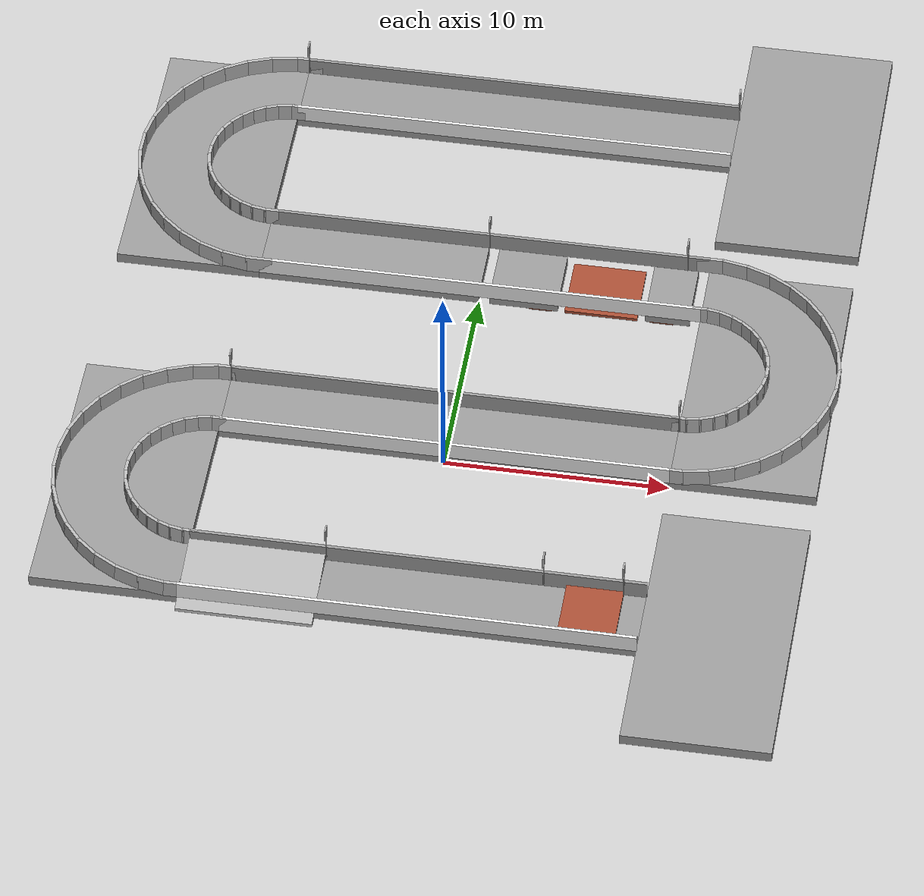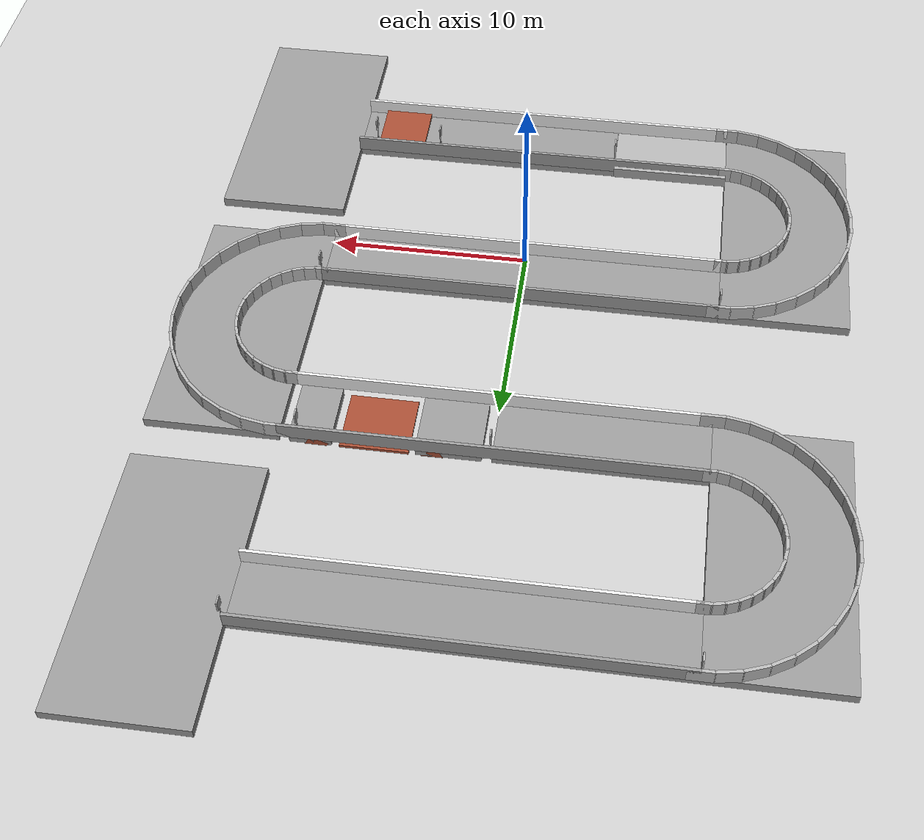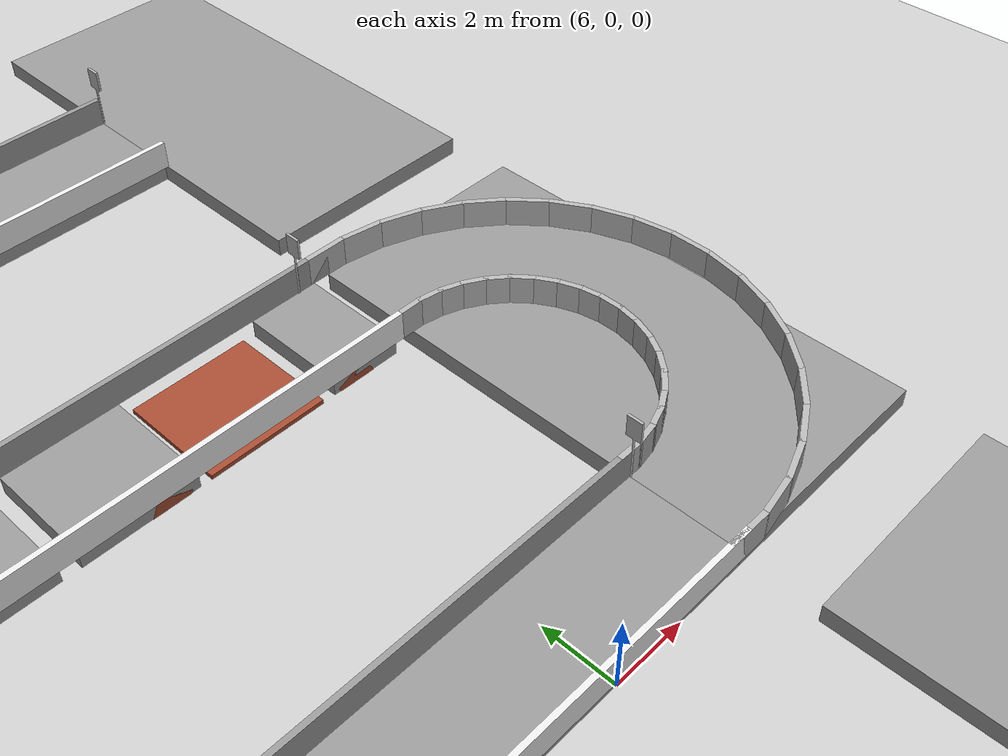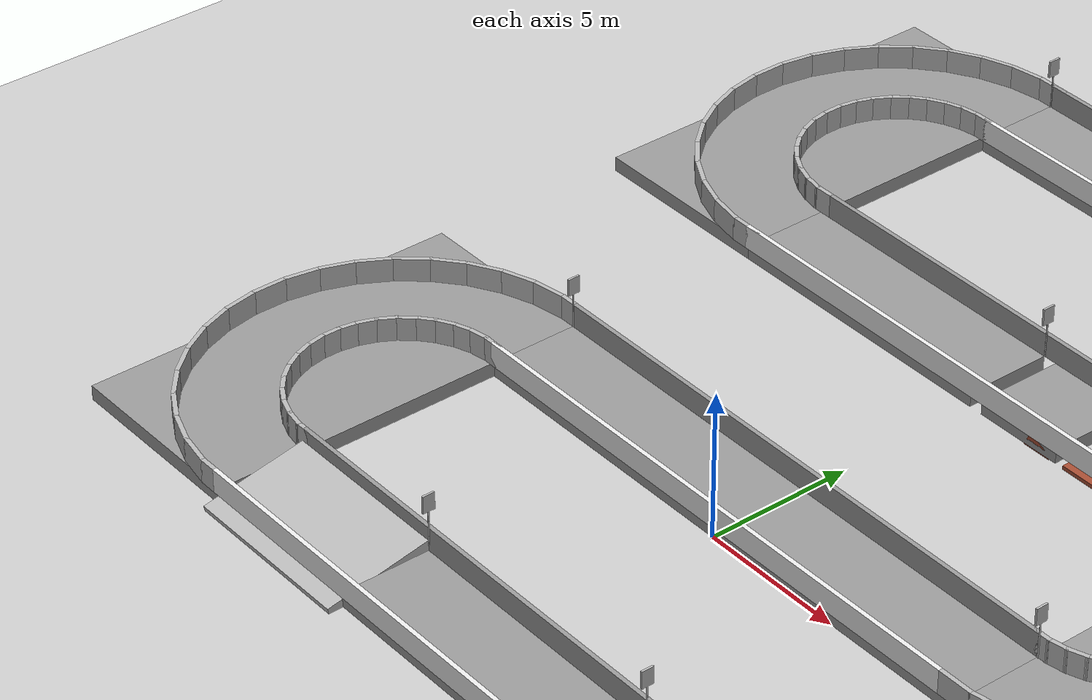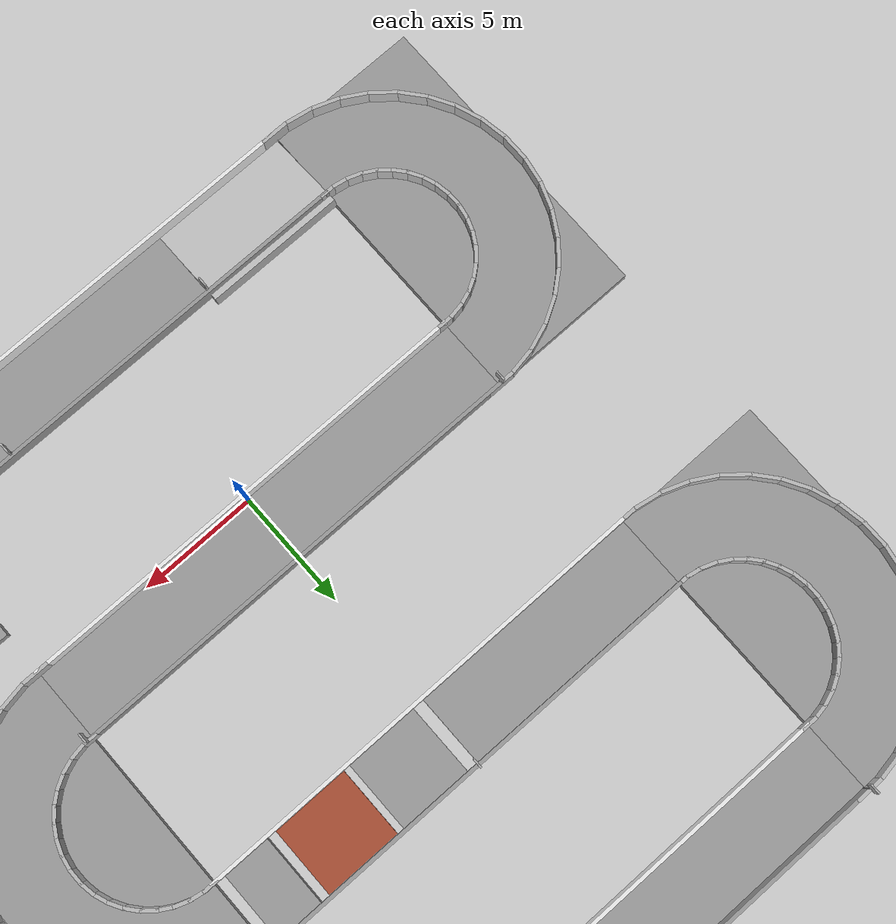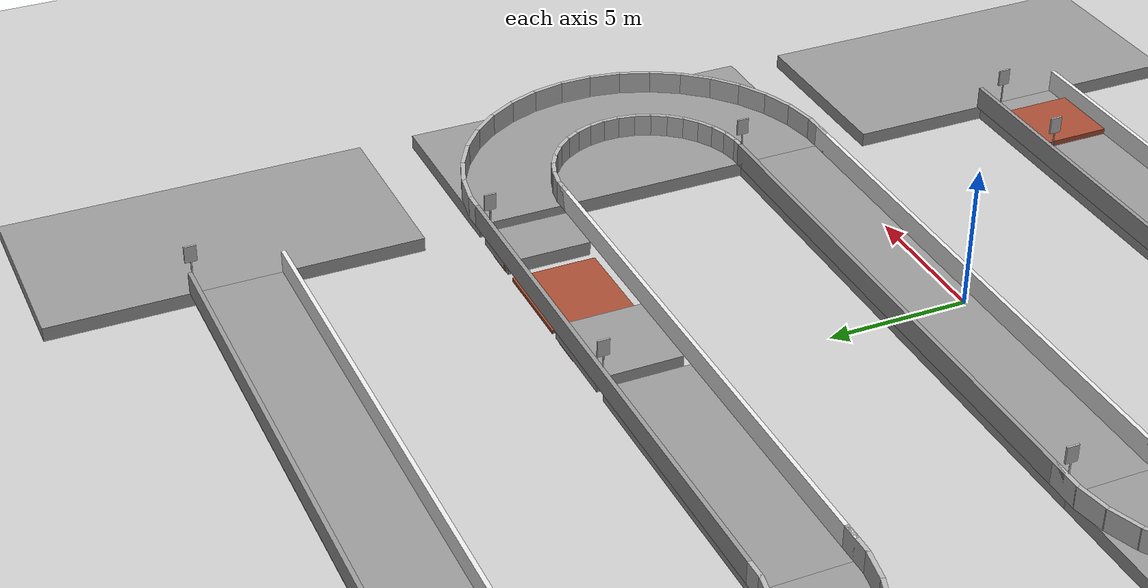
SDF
<sdf version="1.7">
 <world name="default">
  <light name="sun" type="directional">
   <pose>0 0 10 0 -0 0</pose>
   <diffuse>0.8 0.8 0.8 1</diffuse>
   <specular>0.2 0.2 0.2 1</specular>
   <attenuation>
    <range>1000</range>
    <constant>0.9</constant>
    <linear>0.01</linear>
    <quadratic>0.001</quadratic>
   </attenuation>
   <direction>-0.5 0.1 -0.9</direction>
   <spot><inner_angle>0</inner_angle><outer_angle>0</outer_angle><falloff>0</falloff></spot>
  </light>
  <model name="ground_plane">
   <static>1</static>
   <link name="link">
    <collision name="collision">
     <geometry><plane><normal>0 0 1</normal><size>100 100</size></plane></geometry>
     <surface><friction><ode><mu>100</mu><mu2>50</mu2></ode></friction></surface>
    </collision>
    <visual name="visual">
     <cast_shadows>0</cast_shadows>
     <geometry><plane><normal>0 0 1</normal><size>100 100</size></plane></geometry>
     <material>
      <script><uri>file://media/materials/scripts/gazebo.material</uri><name>Gazebo/Grey</name></script>
     </material>
    </visual>
   </link>
  </model>
  <gravity>0 0 -9.8</gravity>
  <magnetic_field>6e-06 2.3e-05 -4.2e-05</magnetic_field>
  <atmosphere type="adiabatic"/>
  <physics type="ode">
   <max_step_size>0.001</max_step_size>
   <real_time_factor>1</real_time_factor>
   <real_time_update_rate>1000</real_time_update_rate>
  </physics>
  <scene><ambient>0.4 0.4 0.4 1</ambient><background>0.7 0.7 0.7 1</background><shadows>1</shadows></scene>
  <audio><device>default</device></audio>
  <spherical_coordinates>
   <surface_model>EARTH_WGS84</surface_model>
   <latitude_deg>0</latitude_deg>
   <longitude_deg>0</longitude_deg>
   <elevation>0</elevation>
   <heading_deg>0</heading_deg>
  </spherical_coordinates>
  <model name="ika">
   <pose>0 -8.5 0.5 0 -0 0</pose>
   <static>1</static>
   <link name="Wall_1_0">
    <collision name="Wall_4_Collision">
     <geometry><box><size>20 0.15 0.8</size></box></geometry>
     <pose>0 0 0.4 0 -0 0</pose>
    </collision>
    <visual name="Wall_4_Visual">
     <pose>0 0 0.4 0 -0 0</pose>
     <geometry><box><size>20 0.15 0.8</size></box></geometry>
     <material>
      <script><uri>file://media/materials/scripts/gazebo.material</uri><name>Gazebo/Grey</name></script>
      <ambient>1 1 1 1</ambient>
     </material>
     <meta><layer>0</layer></meta>
    </visual>
    <pose>-0 1.575 0 0 -0 0</pose>
   </link>
   <link name="Wall_1_1">
    <collision name="Wall_7_Collision">
     <geometry><box><size>20 0.15 0.8</size></box></geometry>
     <pose>0 0 0.4 0 -0 0</pose>
    </collision>
    <visual name="Wall_7_Visual">
     <pose>0 0 0.4 0 -0 0</pose>
     <geometry><box><size>20 0.15 0.8</size></box></geometry>
     <material>
      <script><uri>file://media/materials/scripts/gazebo.material</uri><name>Gazebo/White</name></script>
      <ambient>1 1 1 1</ambient>
     </material>
     <meta><layer>0</layer></meta>
    </visual>
    <pose>-0 -1.575 0 0 -0 0</pose>
   </link>
   <link name="link_0">
    <pose>-10 11.575 0.4 0 -0 1.5708</pose>
    <collision name="col1"><geometry><box><size>0.15 1.2 0.8</size></box></geometry></collision>
    <visual name="vis1"><geometry><box><size>0.15 1.2 0.8</size></box></geometry></visual>
   </link>
   <link name="link_1">
    <pose>-11.1418 11.4751 0.4 0 -0 1.74533</pose>
    <collision name="col1"><geometry><box><size>0.15 1.2 0.8</size></box></geometry></collision>
    <visual name="vis1"><geometry><box><size>0.15 1.2 0.8</size></box></geometry></visual>
   </link>
   <link name="link_2">
    <pose>-12.2488 11.1785 0.4 0 -0 1.91987</pose>
    <collision name="col1"><geometry><box><size>0.15 1.2 0.8</size></box></geometry></collision>
    <visual name="vis1"><geometry><box><size>0.15 1.2 0.8</size></box></geometry></visual>
   </link>
   <link name="link_3">
    <pose>-13.2875 10.6941 0.4 0 -0 2.0944</pose>
    <collision name="col1"><geometry><box><size>0.15 1.2 0.8</size></box></geometry></collision>
    <visual name="vis1"><geometry><box><size>0.15 1.2 0.8</size></box></geometry></visual>
   </link>
   <link name="link_4">
    <pose>-14.2264 10.0367 0.4 0 -0 2.26893</pose>
    <collision name="col1"><geometry><box><size>0.15 1.2 0.8</size></box></geometry></collision>
    <visual name="vis1"><geometry><box><size>0.15 1.2 0.8</size></box></geometry></visual>
   </link>
   <link name="link_5">
    <pose>-15.0368 9.2263 0.4 0 -0 2.44347</pose>
    <collision name="col1"><geometry><box><size>0.15 1.2 0.8</size></box></geometry></collision>
    <visual name="vis1"><geometry><box><size>0.15 1.2 0.8</size></box></geometry></visual>
   </link>
   <link name="link_6">
    <pose>-15.6941 8.28746 0.4 0 -0 2.618</pose>
    <collision name="col1"><geometry><box><size>0.15 1.2 0.8</size></box></geometry></collision>
    <visual name="vis1"><geometry><box><size>0.15 1.2 0.8</size></box></geometry></visual>
   </link>
   <link name="link_7">
    <pose>-16.1785 7.24874 0.4 0 -0 2.79253</pose>
    <collision name="col1"><geometry><box><size>0.15 1.2 0.8</size></box></geometry></collision>
    <visual name="vis1"><geometry><box><size>0.15 1.2 0.8</size></box></geometry></visual>
   </link>
   <link name="link_8">
    <pose>-16.4751 6.14169 0.4 0 -0 2.96707</pose>
    <collision name="col1"><geometry><box><size>0.15 1.2 0.8</size></box></geometry></collision>
    <visual name="vis1"><geometry><box><size>0.15 1.2 0.8</size></box></geometry></visual>
   </link>
   <link name="link_9">
    <pose>-16.575 4.99995 0.4 0 -0 -3.14159</pose>
    <collision name="col1"><geometry><box><size>0.15 1.2 0.8</size></box></geometry></collision>
    <visual name="vis1"><geometry><box><size>0.15 1.2 0.8</size></box></geometry></visual>
   </link>
   <link name="link_10">
    <pose>-16.4751 3.85821 0.4 0 -0 -2.96705</pose>
    <collision name="col1"><geometry><box><size>0.15 1.2 0.8</size></box></geometry></collision>
    <visual name="vis1"><geometry><box><size>0.15 1.2 0.8</size></box></geometry></visual>
   </link>
   <link name="link_11">
    <pose>-16.1785 2.75117 0.4 0 -0 -2.79252</pose>
    <collision name="col1"><geometry><box><size>0.15 1.2 0.8</size></box></geometry></collision>
    <visual name="vis1"><geometry><box><size>0.15 1.2 0.8</size></box></geometry></visual>
   </link>
   <link name="link_12">
    <pose>-15.6941 1.71245 0.4 0 -0 -2.61799</pose>
    <collision name="col1"><geometry><box><size>0.15 1.2 0.8</size></box></geometry></collision>
    <visual name="vis1"><geometry><box><size>0.15 1.2 0.8</size></box></geometry></visual>
   </link>
   <link name="link_13">
    <pose>-15.0367 0.773626 0.4 0 -0 -2.44345</pose>
    <collision name="col1"><geometry><box><size>0.15 1.2 0.8</size></box></geometry></collision>
    <visual name="vis1"><geometry><box><size>0.15 1.2 0.8</size></box></geometry></visual>
   </link>
   <link name="link_14">
    <pose>-14.2263 -0.036782 0.4 0 -0 -2.26892</pose>
    <collision name="col1"><geometry><box><size>0.15 1.2 0.8</size></box></geometry></collision>
    <visual name="vis1"><geometry><box><size>0.15 1.2 0.8</size></box></geometry></visual>
   </link>
   <link name="link_15">
    <pose>-13.2874 -0.694149 0.4 0 -0 -2.09438</pose>
    <collision name="col1"><geometry><box><size>0.15 1.2 0.8</size></box></geometry></collision>
    <visual name="vis1"><geometry><box><size>0.15 1.2 0.8</size></box></geometry></visual>
   </link>
   <link name="link_16">
    <pose>-12.2487 -1.1785 0.4 0 -0 -1.91985</pose>
    <collision name="col1"><geometry><box><size>0.15 1.2 0.8</size></box></geometry></collision>
    <visual name="vis1"><geometry><box><size>0.15 1.2 0.8</size></box></geometry></visual>
   </link>
   <link name="link_17">
    <pose>-11.1417 -1.47512 0.4 0 -0 -1.74532</pose>
    <collision name="col1"><geometry><box><size>0.15 1.2 0.8</size></box></geometry></collision>
    <visual name="vis1"><geometry><box><size>0.15 1.2 0.8</size></box></geometry></visual>
   </link>
   <link name="link_18">
    <pose>-9.99993 -1.575 0.4 0 -0 -1.57079</pose>
    <collision name="col1"><geometry><box><size>0.15 1.2 0.8</size></box></geometry></collision>
    <visual name="vis1"><geometry><box><size>0.15 1.2 0.8</size></box></geometry></visual>
   </link>
   <link name="link_s1_0">
    <pose>-10 8.425 0.4 0 -0 1.5708</pose>
    <collision name="col1"><geometry><box><size>0.15 0.7 0.8</size></box></geometry></collision>
    <visual name="vis1"><geometry><box><size>0.15 0.7 0.8</size></box></geometry></visual>
   </link>
   <link name="link_s1_1">
    <pose>-10.5948 8.37296 0.4 0 -0 1.74533</pose>
    <collision name="col1"><geometry><box><size>0.15 0.7 0.8</size></box></geometry></collision>
    <visual name="vis1"><geometry><box><size>0.15 0.7 0.8</size></box></geometry></visual>
   </link>
   <link name="link_s1_2">
    <pose>-11.1714 8.21844 0.4 0 -0 1.91987</pose>
    <collision name="col1"><geometry><box><size>0.15 0.7 0.8</size></box></geometry></collision>
    <visual name="vis1"><geometry><box><size>0.15 0.7 0.8</size></box></geometry></visual>
   </link>
   <link name="link_s1_3">
    <pose>-11.7125 7.96613 0.4 0 -0 2.0944</pose>
    <collision name="col1"><geometry><box><size>0.15 0.7 0.8</size></box></geometry></collision>
    <visual name="vis1"><geometry><box><size>0.15 0.7 0.8</size></box></geometry></visual>
   </link>
   <link name="link_s1_4">
    <pose>-12.2016 7.62369 0.4 0 -0 2.26893</pose>
    <collision name="col1"><geometry><box><size>0.15 0.7 0.8</size></box></geometry></collision>
    <visual name="vis1"><geometry><box><size>0.15 0.7 0.8</size></box></geometry></visual>
   </link>
   <link name="link_s1_5">
    <pose>-12.6237 7.20153 0.4 0 -0 2.44347</pose>
    <collision name="col1"><geometry><box><size>0.15 0.7 0.8</size></box></geometry></collision>
    <visual name="vis1"><geometry><box><size>0.15 0.7 0.8</size></box></geometry></visual>
   </link>
   <link name="link_s1_6">
    <pose>-12.9661 6.71248 0.4 0 -0 2.618</pose>
    <collision name="col1"><geometry><box><size>0.15 0.7 0.8</size></box></geometry></collision>
    <visual name="vis1"><geometry><box><size>0.15 0.7 0.8</size></box></geometry></visual>
   </link>
   <link name="link_s1_7">
    <pose>-13.2185 6.1714 0.4 0 -0 2.79253</pose>
    <collision name="col1"><geometry><box><size>0.15 0.7 0.8</size></box></geometry></collision>
    <visual name="vis1"><geometry><box><size>0.15 0.7 0.8</size></box></geometry></visual>
   </link>
   <link name="link_s1_8">
    <pose>-13.373 5.59472 0.4 0 -0 2.96707</pose>
    <collision name="col1"><geometry><box><size>0.15 0.7 0.8</size></box></geometry></collision>
    <visual name="vis1"><geometry><box><size>0.15 0.7 0.8</size></box></geometry></visual>
   </link>
   <link name="link_s1_9">
    <pose>-13.425 4.99998 0.4 0 -0 -3.14159</pose>
    <collision name="col1"><geometry><box><size>0.15 0.7 0.8</size></box></geometry></collision>
    <visual name="vis1"><geometry><box><size>0.15 0.7 0.8</size></box></geometry></visual>
   </link>
   <link name="link_s1_10">
    <pose>-13.373 4.40523 0.4 0 -0 -2.96705</pose>
    <collision name="col1"><geometry><box><size>0.15 0.7 0.8</size></box></geometry></collision>
    <visual name="vis1"><geometry><box><size>0.15 0.7 0.8</size></box></geometry></visual>
   </link>
   <link name="link_s1_11">
    <pose>-13.2184 3.82856 0.4 0 -0 -2.79252</pose>
    <collision name="col1"><geometry><box><size>0.15 0.7 0.8</size></box></geometry></collision>
    <visual name="vis1"><geometry><box><size>0.15 0.7 0.8</size></box></geometry></visual>
   </link>
   <link name="link_s1_12">
    <pose>-12.9661 3.28748 0.4 0 -0 -2.61799</pose>
    <collision name="col1"><geometry><box><size>0.15 0.7 0.8</size></box></geometry></collision>
    <visual name="vis1"><geometry><box><size>0.15 0.7 0.8</size></box></geometry></visual>
   </link>
   <link name="link_s1_13">
    <pose>-12.6237 2.79843 0.4 0 -0 -2.44345</pose>
    <collision name="col1"><geometry><box><size>0.15 0.7 0.8</size></box></geometry></collision>
    <visual name="vis1"><geometry><box><size>0.15 0.7 0.8</size></box></geometry></visual>
   </link>
   <link name="link_s1_14">
    <pose>-12.2015 2.37628 0.4 0 -0 -2.26892</pose>
    <collision name="col1"><geometry><box><size>0.15 0.7 0.8</size></box></geometry></collision>
    <visual name="vis1"><geometry><box><size>0.15 0.7 0.8</size></box></geometry></visual>
   </link>
   <link name="link_s1_15">
    <pose>-11.7125 2.03385 0.4 0 -0 -2.09438</pose>
    <collision name="col1"><geometry><box><size>0.15 0.7 0.8</size></box></geometry></collision>
    <visual name="vis1"><geometry><box><size>0.15 0.7 0.8</size></box></geometry></visual>
   </link>
   <link name="link_s1_16">
    <pose>-11.1714 1.78154 0.4 0 -0 -1.91985</pose>
    <collision name="col1"><geometry><box><size>0.15 0.7 0.8</size></box></geometry></collision>
    <visual name="vis1"><geometry><box><size>0.15 0.7 0.8</size></box></geometry></visual>
   </link>
   <link name="link_s1_17">
    <pose>-10.5947 1.62703 0.4 0 -0 -1.74532</pose>
    <collision name="col1"><geometry><box><size>0.15 0.7 0.8</size></box></geometry></collision>
    <visual name="vis1"><geometry><box><size>0.15 0.7 0.8</size></box></geometry></visual>
   </link>
   <link name="link_s1_18">
    <pose>-9.99996 1.575 0.4 0 -0 -1.57079</pose>
    <collision name="col1"><geometry><box><size>0.15 0.7 0.8</size></box></geometry></collision>
    <visual name="vis1"><geometry><box><size>0.15 0.7 0.8</size></box></geometry></visual>
   </link>
   <link name="Wall_2_0">
    <pose>-0 11.575 0 0 -0 0</pose>
    <collision name="Wall_4_Collision">
     <geometry><box><size>20 0.15 0.8</size></box></geometry>
     <pose>0 0 0.4 0 -0 0</pose>
    </collision>
    <visual name="Wall_4_Visual">
     <pose>0 0 0.4 0 -0 0</pose>
     <geometry><box><size>20 0.15 0.8</size></box></geometry>
     <material>
      <script><uri>file://media/materials/scripts/gazebo.material</uri><name>Gazebo/Grey</name></script>
      <ambient>1 1 1 1</ambient>
     </material>
     <meta><layer>0</layer></meta>
    </visual>
   </link>
   <link name="Wall_2_1">
    <pose>-0 8.425 0 0 -0 0</pose>
    <collision name="Wall_7_Collision">
     <geometry><box><size>20 0.15 0.8</size></box></geometry>
     <pose>0 0 0.4 0 -0 0</pose>
    </collision>
    <visual name="Wall_7_Visual">
     <pose>0 0 0.4 0 -0 0</pose>
     <geometry><box><size>20 0.15 0.8</size></box></geometry>
     <material>
      <script><uri>file://media/materials/scripts/gazebo.material</uri><name>Gazebo/White</name></script>
      <ambient>1 1 1 1</ambient>
     </material>
     <meta><layer>0</layer></meta>
    </visual>
   </link>
   <link name="link_s2_0">
    <pose>9.99999 11.575 0.4 0 0 -1.5708</pose>
    <collision name="col1"><geometry><box><size>0.15 0.7 0.8</size></box></geometry></collision>
    <visual name="vis1"><geometry><box><size>0.15 0.7 0.8</size></box></geometry></visual>
   </link>
   <link name="link_s2_1">
    <pose>10.5947 11.627 0.4 0 0 -1.39627</pose>
    <collision name="col1"><geometry><box><size>0.15 0.7 0.8</size></box></geometry></collision>
    <visual name="vis1"><geometry><box><size>0.15 0.7 0.8</size></box></geometry></visual>
   </link>
   <link name="link_s2_2">
    <pose>11.1714 11.7815 0.4 0 0 -1.22173</pose>
    <collision name="col1"><geometry><box><size>0.15 0.7 0.8</size></box></geometry></collision>
    <visual name="vis1"><geometry><box><size>0.15 0.7 0.8</size></box></geometry></visual>
   </link>
   <link name="link_s2_3">
    <pose>11.7125 12.0339 0.4 0 0 -1.0472</pose>
    <collision name="col1"><geometry><box><size>0.15 0.7 0.8</size></box></geometry></collision>
    <visual name="vis1"><geometry><box><size>0.15 0.7 0.8</size></box></geometry></visual>
   </link>
   <link name="link_s2_4">
    <pose>12.2015 12.3763 0.4 0 0 -0.872667</pose>
    <collision name="col1"><geometry><box><size>0.15 0.7 0.8</size></box></geometry></collision>
    <visual name="vis1"><geometry><box><size>0.15 0.7 0.8</size></box></geometry></visual>
   </link>
   <link name="link_s2_5">
    <pose>12.6237 12.7984 0.4 0 0 -0.698133</pose>
    <collision name="col1"><geometry><box><size>0.15 0.7 0.8</size></box></geometry></collision>
    <visual name="vis1"><geometry><box><size>0.15 0.7 0.8</size></box></geometry></visual>
   </link>
   <link name="link_s2_6">
    <pose>12.9661 13.2875 0.4 0 0 -0.5236</pose>
    <collision name="col1"><geometry><box><size>0.15 0.7 0.8</size></box></geometry></collision>
    <visual name="vis1"><geometry><box><size>0.15 0.7 0.8</size></box></geometry></visual>
   </link>
   <link name="link_s2_7">
    <pose>13.2184 13.8286 0.4 0 0 -0.349067</pose>
    <collision name="col1"><geometry><box><size>0.15 0.7 0.8</size></box></geometry></collision>
    <visual name="vis1"><geometry><box><size>0.15 0.7 0.8</size></box></geometry></visual>
   </link>
   <link name="link_s2_8">
    <pose>13.373 14.4053 0.4 0 0 -0.174533</pose>
    <collision name="col1"><geometry><box><size>0.15 0.7 0.8</size></box></geometry></collision>
    <visual name="vis1"><geometry><box><size>0.15 0.7 0.8</size></box></geometry></visual>
   </link>
   <link name="link_s2_9">
    <pose>13.425 15 0.4 0 -0 0</pose>
    <collision name="col1"><geometry><box><size>0.15 0.7 0.8</size></box></geometry></collision>
    <visual name="vis1"><geometry><box><size>0.15 0.7 0.8</size></box></geometry></visual>
   </link>
   <link name="link_s2_10">
    <pose>13.373 15.5947 0.4 0 -0 0.174533</pose>
    <collision name="col1"><geometry><box><size>0.15 0.7 0.8</size></box></geometry></collision>
    <visual name="vis1"><geometry><box><size>0.15 0.7 0.8</size></box></geometry></visual>
   </link>
   <link name="link_s2_11">
    <pose>13.2184 16.1714 0.4 0 -0 0.349067</pose>
    <collision name="col1"><geometry><box><size>0.15 0.7 0.8</size></box></geometry></collision>
    <visual name="vis1"><geometry><box><size>0.15 0.7 0.8</size></box></geometry></visual>
   </link>
   <link name="link_s2_12">
    <pose>12.9661 16.7125 0.4 0 -0 0.5236</pose>
    <collision name="col1"><geometry><box><size>0.15 0.7 0.8</size></box></geometry></collision>
    <visual name="vis1"><geometry><box><size>0.15 0.7 0.8</size></box></geometry></visual>
   </link>
   <link name="link_s2_13">
    <pose>12.6237 17.2016 0.4 0 -0 0.698133</pose>
    <collision name="col1"><geometry><box><size>0.15 0.7 0.8</size></box></geometry></collision>
    <visual name="vis1"><geometry><box><size>0.15 0.7 0.8</size></box></geometry></visual>
   </link>
   <link name="link_s2_14">
    <pose>12.2015 17.6237 0.4 0 -0 0.872667</pose>
    <collision name="col1"><geometry><box><size>0.15 0.7 0.8</size></box></geometry></collision>
    <visual name="vis1"><geometry><box><size>0.15 0.7 0.8</size></box></geometry></visual>
   </link>
   <link name="link_s2_15">
    <pose>11.7125 17.9661 0.4 0 -0 1.0472</pose>
    <collision name="col1"><geometry><box><size>0.15 0.7 0.8</size></box></geometry></collision>
    <visual name="vis1"><geometry><box><size>0.15 0.7 0.8</size></box></geometry></visual>
   </link>
   <link name="link_s2_16">
    <pose>11.1714 18.2185 0.4 0 -0 1.22173</pose>
    <collision name="col1"><geometry><box><size>0.15 0.7 0.8</size></box></geometry></collision>
    <visual name="vis1"><geometry><box><size>0.15 0.7 0.8</size></box></geometry></visual>
   </link>
   <link name="link_s2_17">
    <pose>10.5947 18.373 0.4 0 -0 1.39627</pose>
    <collision name="col1"><geometry><box><size>0.15 0.7 0.8</size></box></geometry></collision>
    <visual name="vis1"><geometry><box><size>0.15 0.7 0.8</size></box></geometry></visual>
   </link>
   <link name="link_s2_18">
    <pose>9.99999 18.425 0.4 0 -0 1.5708</pose>
    <collision name="col1"><geometry><box><size>0.15 0.7 0.8</size></box></geometry></collision>
    <visual name="vis1"><geometry><box><size>0.15 0.7 0.8</size></box></geometry></visual>
   </link>
   <link name="link_l2_0">
    <pose>9.99998 8.425 0.4 0 0 -1.5708</pose>
    <collision name="col1"><geometry><box><size>0.15 1.2 0.8</size></box></geometry></collision>
    <visual name="vis1"><geometry><box><size>0.15 1.2 0.8</size></box></geometry></visual>
   </link>
   <link name="link_l2_1">
    <pose>11.1417 8.52488 0.4 0 0 -1.39627</pose>
    <collision name="col1"><geometry><box><size>0.15 1.2 0.8</size></box></geometry></collision>
    <visual name="vis1"><geometry><box><size>0.15 1.2 0.8</size></box></geometry></visual>
   </link>
   <link name="link_l2_2">
    <pose>12.2488 8.82151 0.4 0 0 -1.22173</pose>
    <collision name="col1"><geometry><box><size>0.15 1.2 0.8</size></box></geometry></collision>
    <visual name="vis1"><geometry><box><size>0.15 1.2 0.8</size></box></geometry></visual>
   </link>
   <link name="link_l2_3">
    <pose>13.2875 9.30588 0.4 0 0 -1.0472</pose>
    <collision name="col1"><geometry><box><size>0.15 1.2 0.8</size></box></geometry></collision>
    <visual name="vis1"><geometry><box><size>0.15 1.2 0.8</size></box></geometry></visual>
   </link>
   <link name="link_l2_4">
    <pose>14.2263 9.96325 0.4 0 0 -0.872667</pose>
    <collision name="col1"><geometry><box><size>0.15 1.2 0.8</size></box></geometry></collision>
    <visual name="vis1"><geometry><box><size>0.15 1.2 0.8</size></box></geometry></visual>
   </link>
   <link name="link_l2_5">
    <pose>15.0367 10.7737 0.4 0 0 -0.698133</pose>
    <collision name="col1"><geometry><box><size>0.15 1.2 0.8</size></box></geometry></collision>
    <visual name="vis1"><geometry><box><size>0.15 1.2 0.8</size></box></geometry></visual>
   </link>
   <link name="link_l2_6">
    <pose>15.6941 11.7125 0.4 0 0 -0.5236</pose>
    <collision name="col1"><geometry><box><size>0.15 1.2 0.8</size></box></geometry></collision>
    <visual name="vis1"><geometry><box><size>0.15 1.2 0.8</size></box></geometry></visual>
   </link>
   <link name="link_l2_7">
    <pose>16.1785 12.7512 0.4 0 0 -0.349067</pose>
    <collision name="col1"><geometry><box><size>0.15 1.2 0.8</size></box></geometry></collision>
    <visual name="vis1"><geometry><box><size>0.15 1.2 0.8</size></box></geometry></visual>
   </link>
   <link name="link_l2_8">
    <pose>16.4751 13.8583 0.4 0 0 -0.174533</pose>
    <collision name="col1"><geometry><box><size>0.15 1.2 0.8</size></box></geometry></collision>
    <visual name="vis1"><geometry><box><size>0.15 1.2 0.8</size></box></geometry></visual>
   </link>
   <link name="link_l2_9">
    <pose>16.575 15 0.4 0 -0 0</pose>
    <collision name="col1"><geometry><box><size>0.15 1.2 0.8</size></box></geometry></collision>
    <visual name="vis1"><geometry><box><size>0.15 1.2 0.8</size></box></geometry></visual>
   </link>
   <link name="link_l2_10">
    <pose>16.4751 16.1417 0.4 0 -0 0.174533</pose>
    <collision name="col1"><geometry><box><size>0.15 1.2 0.8</size></box></geometry></collision>
    <visual name="vis1"><geometry><box><size>0.15 1.2 0.8</size></box></geometry></visual>
   </link>
   <link name="link_l2_11">
    <pose>16.1785 17.2488 0.4 0 -0 0.349067</pose>
    <collision name="col1"><geometry><box><size>0.15 1.2 0.8</size></box></geometry></collision>
    <visual name="vis1"><geometry><box><size>0.15 1.2 0.8</size></box></geometry></visual>
   </link>
   <link name="link_l2_12">
    <pose>15.6941 18.2875 0.4 0 -0 0.5236</pose>
    <collision name="col1"><geometry><box><size>0.15 1.2 0.8</size></box></geometry></collision>
    <visual name="vis1"><geometry><box><size>0.15 1.2 0.8</size></box></geometry></visual>
   </link>
   <link name="link_l2_13">
    <pose>15.0367 19.2263 0.4 0 -0 0.698133</pose>
    <collision name="col1"><geometry><box><size>0.15 1.2 0.8</size></box></geometry></collision>
    <visual name="vis1"><geometry><box><size>0.15 1.2 0.8</size></box></geometry></visual>
   </link>
   <link name="link_l2_14">
    <pose>14.2263 20.0368 0.4 0 -0 0.872667</pose>
    <collision name="col1"><geometry><box><size>0.15 1.2 0.8</size></box></geometry></collision>
    <visual name="vis1"><geometry><box><size>0.15 1.2 0.8</size></box></geometry></visual>
   </link>
   <link name="link_l2_15">
    <pose>13.2875 20.6941 0.4 0 -0 1.0472</pose>
    <collision name="col1"><geometry><box><size>0.15 1.2 0.8</size></box></geometry></collision>
    <visual name="vis1"><geometry><box><size>0.15 1.2 0.8</size></box></geometry></visual>
   </link>
   <link name="link_l2_16">
    <pose>12.2488 21.1785 0.4 0 -0 1.22173</pose>
    <collision name="col1"><geometry><box><size>0.15 1.2 0.8</size></box></geometry></collision>
    <visual name="vis1"><geometry><box><size>0.15 1.2 0.8</size></box></geometry></visual>
   </link>
   <link name="link_l2_17">
    <pose>11.1417 21.4751 0.4 0 -0 1.39627</pose>
    <collision name="col1"><geometry><box><size>0.15 1.2 0.8</size></box></geometry></collision>
    <visual name="vis1"><geometry><box><size>0.15 1.2 0.8</size></box></geometry></visual>
   </link>
   <link name="link_l2_18">
    <pose>9.99998 21.575 0.4 0 -0 1.5708</pose>
    <collision name="col1"><geometry><box><size>0.15 1.2 0.8</size></box></geometry></collision>
    <visual name="vis1"><geometry><box><size>0.15 1.2 0.8</size></box></geometry></visual>
   </link>
   <link name="Wall_3_0">
    <pose>-0 21.575 0 0 -0 0</pose>
    <collision name="Wall_4_Collision">
     <geometry><box><size>20 0.15 0.8</size></box></geometry>
     <pose>0 0 0.4 0 -0 0</pose>
    </collision>
    <visual name="Wall_4_Visual">
     <pose>0 0 0.4 0 -0 0</pose>
     <geometry><box><size>20 0.15 0.8</size></box></geometry>
     <material>
      <script><uri>file://media/materials/scripts/gazebo.material</uri><name>Gazebo/Grey</name></script>
      <ambient>1 1 1 1</ambient>
     </material>
     <meta><layer>0</layer></meta>
    </visual>
   </link>
   <link name="Wall_3_1">
    <pose>-0 18.425 0 0 -0 0</pose>
    <collision name="Wall_7_Collision">
     <geometry><box><size>20 0.15 0.8</size></box></geometry>
     <pose>0 0 0.4 0 -0 0</pose>
    </collision>
    <visual name="Wall_7_Visual">
     <pose>0 0 0.4 0 -0 0</pose>
     <geometry><box><size>20 0.15 0.8</size></box></geometry>
     <material>
      <script><uri>file://media/materials/scripts/gazebo.material</uri><name>Gazebo/White</name></script>
      <ambient>1 1 1 1</ambient>
     </material>
     <meta><layer>0</layer></meta>
    </visual>
   </link>
   <link name="link_l3_0">
    <pose>-10 31.575 0.4 0 -0 1.5708</pose>
    <collision name="col1"><geometry><box><size>0.15 1.2 0.8</size></box></geometry></collision>
    <visual name="vis1"><geometry><box><size>0.15 1.2 0.8</size></box></geometry></visual>
   </link>
   <link name="link_l3_1">
    <pose>-11.1418 31.4751 0.4 0 -0 1.74533</pose>
    <collision name="col1"><geometry><box><size>0.15 1.2 0.8</size></box></geometry></collision>
    <visual name="vis1"><geometry><box><size>0.15 1.2 0.8</size></box></geometry></visual>
   </link>
   <link name="link_l3_2">
    <pose>-12.2488 31.1785 0.4 0 -0 1.91987</pose>
    <collision name="col1"><geometry><box><size>0.15 1.2 0.8</size></box></geometry></collision>
    <visual name="vis1"><geometry><box><size>0.15 1.2 0.8</size></box></geometry></visual>
   </link>
   <link name="link_l3_3">
    <pose>-13.2875 30.6941 0.4 0 -0 2.0944</pose>
    <collision name="col1"><geometry><box><size>0.15 1.2 0.8</size></box></geometry></collision>
    <visual name="vis1"><geometry><box><size>0.15 1.2 0.8</size></box></geometry></visual>
   </link>
   <link name="link_l3_4">
    <pose>-14.2264 30.0367 0.4 0 -0 2.26893</pose>
    <collision name="col1"><geometry><box><size>0.15 1.2 0.8</size></box></geometry></collision>
    <visual name="vis1"><geometry><box><size>0.15 1.2 0.8</size></box></geometry></visual>
   </link>
   <link name="link_l3_5">
    <pose>-15.0368 29.2263 0.4 0 -0 2.44347</pose>
    <collision name="col1"><geometry><box><size>0.15 1.2 0.8</size></box></geometry></collision>
    <visual name="vis1"><geometry><box><size>0.15 1.2 0.8</size></box></geometry></visual>
   </link>
   <link name="link_l3_6">
    <pose>-15.6941 28.2875 0.4 0 -0 2.618</pose>
    <collision name="col1"><geometry><box><size>0.15 1.2 0.8</size></box></geometry></collision>
    <visual name="vis1"><geometry><box><size>0.15 1.2 0.8</size></box></geometry></visual>
   </link>
   <link name="link_l3_7">
    <pose>-16.1785 27.2487 0.4 0 -0 2.79253</pose>
    <collision name="col1"><geometry><box><size>0.15 1.2 0.8</size></box></geometry></collision>
    <visual name="vis1"><geometry><box><size>0.15 1.2 0.8</size></box></geometry></visual>
   </link>
   <link name="link_l3_8">
    <pose>-16.4751 26.1417 0.4 0 -0 2.96707</pose>
    <collision name="col1"><geometry><box><size>0.15 1.2 0.8</size></box></geometry></collision>
    <visual name="vis1"><geometry><box><size>0.15 1.2 0.8</size></box></geometry></visual>
   </link>
   <link name="link_l3_9">
    <pose>-16.575 25 0.4 0 -0 -3.14159</pose>
    <collision name="col1"><geometry><box><size>0.15 1.2 0.8</size></box></geometry></collision>
    <visual name="vis1"><geometry><box><size>0.15 1.2 0.8</size></box></geometry></visual>
   </link>
   <link name="link_l3_10">
    <pose>-16.4751 23.8582 0.4 0 -0 -2.96705</pose>
    <collision name="col1"><geometry><box><size>0.15 1.2 0.8</size></box></geometry></collision>
    <visual name="vis1"><geometry><box><size>0.15 1.2 0.8</size></box></geometry></visual>
   </link>
   <link name="link_l3_11">
    <pose>-16.1785 22.7512 0.4 0 -0 -2.79252</pose>
    <collision name="col1"><geometry><box><size>0.15 1.2 0.8</size></box></geometry></collision>
    <visual name="vis1"><geometry><box><size>0.15 1.2 0.8</size></box></geometry></visual>
   </link>
   <link name="link_l3_12">
    <pose>-15.6941 21.7125 0.4 0 -0 -2.61799</pose>
    <collision name="col1"><geometry><box><size>0.15 1.2 0.8</size></box></geometry></collision>
    <visual name="vis1"><geometry><box><size>0.15 1.2 0.8</size></box></geometry></visual>
   </link>
   <link name="link_l3_13">
    <pose>-15.0367 20.7736 0.4 0 -0 -2.44345</pose>
    <collision name="col1"><geometry><box><size>0.15 1.2 0.8</size></box></geometry></collision>
    <visual name="vis1"><geometry><box><size>0.15 1.2 0.8</size></box></geometry></visual>
   </link>
   <link name="link_l3_14">
    <pose>-14.2263 19.9632 0.4 0 -0 -2.26892</pose>
    <collision name="col1"><geometry><box><size>0.15 1.2 0.8</size></box></geometry></collision>
    <visual name="vis1"><geometry><box><size>0.15 1.2 0.8</size></box></geometry></visual>
   </link>
   <link name="link_l3_15">
    <pose>-13.2874 19.3059 0.4 0 -0 -2.09438</pose>
    <collision name="col1"><geometry><box><size>0.15 1.2 0.8</size></box></geometry></collision>
    <visual name="vis1"><geometry><box><size>0.15 1.2 0.8</size></box></geometry></visual>
   </link>
   <link name="link_l3_16">
    <pose>-12.2487 18.8215 0.4 0 -0 -1.91985</pose>
    <collision name="col1"><geometry><box><size>0.15 1.2 0.8</size></box></geometry></collision>
    <visual name="vis1"><geometry><box><size>0.15 1.2 0.8</size></box></geometry></visual>
   </link>
   <link name="link_l3_17">
    <pose>-11.1417 18.5249 0.4 0 -0 -1.74532</pose>
    <collision name="col1"><geometry><box><size>0.15 1.2 0.8</size></box></geometry></collision>
    <visual name="vis1"><geometry><box><size>0.15 1.2 0.8</size></box></geometry></visual>
   </link>
   <link name="link_l3_18">
    <pose>-9.99993 18.425 0.4 0 -0 -1.57079</pose>
    <collision name="col1"><geometry><box><size>0.15 1.2 0.8</size></box></geometry></collision>
    <visual name="vis1"><geometry><box><size>0.15 1.2 0.8</size></box></geometry></visual>
   </link>
   <link name="link_s3_0">
    <pose>-10 28.425 0.4 0 -0 1.5708</pose>
    <collision name="col1"><geometry><box><size>0.15 0.7 0.8</size></box></geometry></collision>
    <visual name="vis1"><geometry><box><size>0.15 0.7 0.8</size></box></geometry></visual>
   </link>
   <link name="link_s3_1">
    <pose>-10.5948 28.373 0.4 0 -0 1.74533</pose>
    <collision name="col1"><geometry><box><size>0.15 0.7 0.8</size></box></geometry></collision>
    <visual name="vis1"><geometry><box><size>0.15 0.7 0.8</size></box></geometry></visual>
   </link>
   <link name="link_s3_2">
    <pose>-11.1714 28.2184 0.4 0 -0 1.91987</pose>
    <collision name="col1"><geometry><box><size>0.15 0.7 0.8</size></box></geometry></collision>
    <visual name="vis1"><geometry><box><size>0.15 0.7 0.8</size></box></geometry></visual>
   </link>
   <link name="link_s3_3">
    <pose>-11.7125 27.9661 0.4 0 -0 2.0944</pose>
    <collision name="col1"><geometry><box><size>0.15 0.7 0.8</size></box></geometry></collision>
    <visual name="vis1"><geometry><box><size>0.15 0.7 0.8</size></box></geometry></visual>
   </link>
   <link name="link_s3_4">
    <pose>-12.2016 27.6237 0.4 0 -0 2.26893</pose>
    <collision name="col1"><geometry><box><size>0.15 0.7 0.8</size></box></geometry></collision>
    <visual name="vis1"><geometry><box><size>0.15 0.7 0.8</size></box></geometry></visual>
   </link>
   <link name="link_s3_5">
    <pose>-12.6237 27.2015 0.4 0 -0 2.44347</pose>
    <collision name="col1"><geometry><box><size>0.15 0.7 0.8</size></box></geometry></collision>
    <visual name="vis1"><geometry><box><size>0.15 0.7 0.8</size></box></geometry></visual>
   </link>
   <link name="link_s3_6">
    <pose>-12.9661 26.7125 0.4 0 -0 2.618</pose>
    <collision name="col1"><geometry><box><size>0.15 0.7 0.8</size></box></geometry></collision>
    <visual name="vis1"><geometry><box><size>0.15 0.7 0.8</size></box></geometry></visual>
   </link>
   <link name="link_s3_7">
    <pose>-13.2185 26.1714 0.4 0 -0 2.79253</pose>
    <collision name="col1"><geometry><box><size>0.15 0.7 0.8</size></box></geometry></collision>
    <visual name="vis1"><geometry><box><size>0.15 0.7 0.8</size></box></geometry></visual>
   </link>
   <link name="link_s3_8">
    <pose>-13.373 25.5947 0.4 0 -0 2.96707</pose>
    <collision name="col1"><geometry><box><size>0.15 0.7 0.8</size></box></geometry></collision>
    <visual name="vis1"><geometry><box><size>0.15 0.7 0.8</size></box></geometry></visual>
   </link>
   <link name="link_s3_9">
    <pose>-13.425 25 0.4 0 -0 -3.14159</pose>
    <collision name="col1"><geometry><box><size>0.15 0.7 0.8</size></box></geometry></collision>
    <visual name="vis1"><geometry><box><size>0.15 0.7 0.8</size></box></geometry></visual>
   </link>
   <link name="link_s3_10">
    <pose>-13.373 24.4052 0.4 0 -0 -2.96705</pose>
    <collision name="col1"><geometry><box><size>0.15 0.7 0.8</size></box></geometry></collision>
    <visual name="vis1"><geometry><box><size>0.15 0.7 0.8</size></box></geometry></visual>
   </link>
   <link name="link_s3_11">
    <pose>-13.2184 23.8286 0.4 0 -0 -2.79252</pose>
    <collision name="col1"><geometry><box><size>0.15 0.7 0.8</size></box></geometry></collision>
    <visual name="vis1"><geometry><box><size>0.15 0.7 0.8</size></box></geometry></visual>
   </link>
   <link name="link_s3_12">
    <pose>-12.9661 23.2875 0.4 0 -0 -2.61799</pose>
    <collision name="col1"><geometry><box><size>0.15 0.7 0.8</size></box></geometry></collision>
    <visual name="vis1"><geometry><box><size>0.15 0.7 0.8</size></box></geometry></visual>
   </link>
   <link name="link_s3_13">
    <pose>-12.6237 22.7984 0.4 0 -0 -2.44345</pose>
    <collision name="col1"><geometry><box><size>0.15 0.7 0.8</size></box></geometry></collision>
    <visual name="vis1"><geometry><box><size>0.15 0.7 0.8</size></box></geometry></visual>
   </link>
   <link name="link_s3_14">
    <pose>-12.2015 22.3763 0.4 0 -0 -2.26892</pose>
    <collision name="col1"><geometry><box><size>0.15 0.7 0.8</size></box></geometry></collision>
    <visual name="vis1"><geometry><box><size>0.15 0.7 0.8</size></box></geometry></visual>
   </link>
   <link name="link_s3_15">
    <pose>-11.7125 22.0338 0.4 0 -0 -2.09438</pose>
    <collision name="col1"><geometry><box><size>0.15 0.7 0.8</size></box></geometry></collision>
    <visual name="vis1"><geometry><box><size>0.15 0.7 0.8</size></box></geometry></visual>
   </link>
   <link name="link_s3_16">
    <pose>-11.1714 21.7815 0.4 0 -0 -1.91985</pose>
    <collision name="col1"><geometry><box><size>0.15 0.7 0.8</size></box></geometry></collision>
    <visual name="vis1"><geometry><box><size>0.15 0.7 0.8</size></box></geometry></visual>
   </link>
   <link name="link_s3_17">
    <pose>-10.5947 21.627 0.4 0 -0 -1.74532</pose>
    <collision name="col1"><geometry><box><size>0.15 0.7 0.8</size></box></geometry></collision>
    <visual name="vis1"><geometry><box><size>0.15 0.7 0.8</size></box></geometry></visual>
   </link>
   <link name="link_s3_18">
    <pose>-9.99996 21.575 0.4 0 -0 -1.57079</pose>
    <collision name="col1"><geometry><box><size>0.15 0.7 0.8</size></box></geometry></collision>
    <visual name="vis1"><geometry><box><size>0.15 0.7 0.8</size></box></geometry></visual>
   </link>
   <link name="Wall_4_0">
    <pose>0 31.575 0 0 -0 0</pose>
    <collision name="Wall_4_Collision">
     <geometry><box><size>20 0.15 0.8</size></box></geometry>
     <pose>0 0 0.4 0 -0 0</pose>
    </collision>
    <visual name="Wall_4_Visual">
     <pose>0 0 0.4 0 -0 0</pose>
     <geometry><box><size>20 0.15 0.8</size></box></geometry>
     <material>
      <script><uri>file://media/materials/scripts/gazebo.material</uri><name>Gazebo/Grey</name></script>
      <ambient>1 1 1 1</ambient>
     </material>
     <meta><layer>0</layer></meta>
    </visual>
   </link>
   <link name="Wall_4_1">
    <pose>-0 28.425 0 0 -0 0</pose>
    <collision name="Wall_7_Collision">
     <geometry><box><size>20 0.15 0.8</size></box></geometry>
     <pose>0 0 0.4 0 -0 0</pose>
    </collision>
    <visual name="Wall_7_Visual">
     <pose>0 0 0.4 0 -0 0</pose>
     <geometry><box><size>20 0.15 0.8</size></box></geometry>
     <material>
      <script><uri>file://media/materials/scripts/gazebo.material</uri><name>Gazebo/White</name></script>
      <ambient>1 1 1 1</ambient>
     </material>
     <meta><layer>0</layer></meta>
    </visual>
   </link>
  </model>
  <model name="ika2">
   <pose>-0.027776 1.5013 0 0 -0 0</pose>
   <static>1</static>
   <link name="straight_2">
    <collision name="main_ground_Collision">
     <geometry><box><size>20 3 0.5</size></box></geometry>
     <pose>0 0 0.25 0 -0 0</pose>
    </collision>
    <visual name="main_ground_Visual">
     <pose>0 0 0.25 0 -0 0</pose>
     <geometry><box><size>20 3 0.5</size></box></geometry>
     <material>
      <script><uri>file://media/materials/scripts/gazebo.material</uri><name>Gazebo/Grey</name></script>
      <ambient>1 1 1 1</ambient>
     </material>
     <meta><layer>0</layer></meta>
    </visual>
   </link>
   <link name="straight_3">
    <pose>-5 10 0 0 -0 0</pose>
    <collision name="main_ground_Collision">
     <geometry><box><size>10 3 0.5</size></box></geometry>
     <pose>0 0 0.25 0 -0 0</pose>
    </collision>
    <visual name="main_ground_Visual">
     <pose>0 0 0.25 0 -0 0</pose>
     <geometry><box><size>10 3 0.5</size></box></geometry>
     <material>
      <script><uri>file://media/materials/scripts/gazebo.material</uri><name>Gazebo/Grey</name></script>
      <ambient>1 1 1 1</ambient>
     </material>
     <meta><layer>0</layer></meta>
    </visual>
   </link>
   <link name="straight_4">
    <pose>0 20 0 0 -0 0</pose>
    <collision name="main_ground_Collision">
     <geometry><box><size>20 3 0.5</size></box></geometry>
     <pose>0 0 0.25 0 -0 0</pose>
    </collision>
    <visual name="main_ground_Visual">
     <pose>0 0 0.25 0 -0 0</pose>
     <geometry><box><size>20 3 0.5</size></box></geometry>
     <material>
      <script><uri>file://media/materials/scripts/gazebo.material</uri><name>Gazebo/Grey</name></script>
      <ambient>1 1 1 1</ambient>
     </material>
     <meta><layer>0</layer></meta>
    </visual>
   </link>
   <link name="round_1">
    <pose>-10 -5 0 0 -0 0</pose>
    <collision name="main_ground_Collision">
     <geometry><box><size>6.5 13 0.5</size></box></geometry>
     <pose>-3.25 0 0.25 0 -0 0</pose>
    </collision>
    <visual name="main_ground_Visual">
     <pose>-3.25 0 0.25 0 -0 0</pose>
     <geometry><box><size>6.5 13 0.5</size></box></geometry>
     <material>
      <script><uri>file://media/materials/scripts/gazebo.material</uri><name>Gazebo/Grey</name></script>
      <ambient>1 1 1 1</ambient>
     </material>
     <meta><layer>0</layer></meta>
    </visual>
   </link>
   <link name="round_2">
    <pose>16.5 5 0 0 -0 0</pose>
    <collision name="main_ground_Collision">
     <geometry><box><size>6.5 13 0.5</size></box></geometry>
     <pose>-3.25 0 0.25 0 -0 0</pose>
    </collision>
    <visual name="main_ground_Visual">
     <pose>-3.25 0 0.25 0 -0 0</pose>
     <geometry><box><size>6.5 13 0.5</size></box></geometry>
     <material>
      <script><uri>file://media/materials/scripts/gazebo.material</uri><name>Gazebo/Grey</name></script>
      <ambient>1 1 1 1</ambient>
     </material>
     <meta><layer>0</layer></meta>
    </visual>
   </link>
   <link name="round_3">
    <pose>-10 15 0 0 -0 0</pose>
    <collision name="main_ground_Collision">
     <geometry><box><size>6.5 13 0.5</size></box></geometry>
     <pose>-3.25 0 0.25 0 -0 0</pose>
    </collision>
    <visual name="main_ground_Visual">
     <pose>-3.25 0 0.25 0 -0 0</pose>
     <geometry><box><size>6.5 13 0.5</size></box></geometry>
     <material>
      <script><uri>file://media/materials/scripts/gazebo.material</uri><name>Gazebo/Grey</name></script>
      <ambient>1 1 1 1</ambient>
     </material>
     <meta><layer>0</layer></meta>
    </visual>
   </link>
   <link name="final">
    <pose>16.5 20 0 0 -0 0</pose>
    <collision name="main_ground_Collision">
     <geometry><box><size>6.5 13 0.5</size></box></geometry>
     <pose>-3.25 0 0.25 0 -0 0</pose>
    </collision>
    <visual name="main_ground_Visual">
     <pose>-3.25 0 0.25 0 -0 0</pose>
     <geometry><box><size>6.5 13 0.5</size></box></geometry>
     <material>
      <script><uri>file://media/materials/scripts/gazebo.material</uri><name>Gazebo/Grey</name></script>
      <ambient>1 1 1 1</ambient>
     </material>
     <meta><layer>0</layer></meta>
    </visual>
   </link>
   <link name="start">
    <pose>16.5 -10 0 0 -0 0</pose>
    <collision name="main_ground_Collision">
     <geometry><box><size>6.5 13 0.5</size></box></geometry>
     <pose>-3.25 0 0.25 0 -0 0</pose>
    </collision>
    <visual name="main_ground_Visual">
     <pose>-3.25 0 0.25 0 -0 0</pose>
     <geometry><box><size>6.5 13 0.5</size></box></geometry>
     <material>
      <script><uri>file://media/materials/scripts/gazebo.material</uri><name>Gazebo/Grey</name></script>
      <ambient>1 1 1 1</ambient>
     </material>
     <meta><layer>0</layer></meta>
    </visual>
   </link>
   <link name="straight_1_1">
    <pose>3 -10 0 0 -0 0</pose>
    <collision name="main_ground_Collision">
     <geometry><box><size>14 3 0.5</size></box></geometry>
     <pose>0 0 0.25 0 -0 0</pose>
    </collision>
    <visual name="main_ground_Visual">
     <pose>0 0 0.25 0 -0 0</pose>
     <geometry><box><size>14 3 0.5</size></box></geometry>
     <material>
      <script><uri>file://media/materials/scripts/gazebo.material</uri><name>Gazebo/Grey</name></script>
      <ambient>1 1 1 1</ambient>
     </material>
     <meta><layer>0</layer></meta>
    </visual>
   </link>
   <link name="yan">
    <pose>-7 -10 0.3 0.197 -0 0</pose>
    <collision name="main_ground_Collision"><geometry><box><size>6 4 0.5</size></box></geometry></collision>
    <visual name="main_ground_Visual">
     <geometry><box><size>6 4 0.5</size></box></geometry>
     <meta><layer>0</layer></meta>
    </visual>
   </link>
  </model>
  <model name="dik">
   <static>1</static>
   <pose>7.75 -8.5 0.5 0 -0 0</pose>
   <link name="dik">
    <collision name="dik_Collision">
     <geometry><box><size>2.5 3 0.2</size></box></geometry>
     <pose>0 0 0.1 0 -0 0</pose>
    </collision>
    <visual name="dik_Visual">
     <pose>0 0 0.1 0 -0 0</pose>
     <geometry><box><size>2.5 3 0.2</size></box></geometry>
     <material>
      <script><uri>file://media/materials/scripts/gazebo.material</uri><name>Gazebo/Bricks</name></script>
      <ambient>1 1 1 1</ambient>
     </material>
     <meta><layer>0</layer></meta>
    </visual>
   </link>
  </model>
  <model name="water">
   <pose>5.5 11.5 0 0 -0 0</pose>
   <static>1</static>
   <link name="water_main">
    <collision name="water_main_Collision"><geometry><box><size>3.284 3 0.2</size></box></geometry></collision>
    <visual name="water_main_Visual">
     <geometry><box><size>3.284 3 0.2</size></box></geometry>
     <material>
      <script><uri>file://media/materials/scripts/gazebo.material</uri><name>Gazebo/Bricks</name></script>
      <ambient>1 1 1 1</ambient>
     </material>
     <meta><layer>0</layer></meta>
    </visual>
   </link>
   <link name="water_out">
    <pose>-2.77 0 -0.129 0 -0 0</pose>
    <collision name="water_out_Collision">
     <geometry><box><size>0.946 3 0.946</size></box></geometry>
     <pose>0 0 0 0 0.4363 0</pose>
    </collision>
    <visual name="water_out_Visual">
     <pose>0 0 0 0 0.4363 0</pose>
     <geometry><box><size>0.946 3 0.946</size></box></geometry>
     <material>
      <script><uri>file://media/materials/scripts/gazebo.material</uri><name>Gazebo/Bricks</name></script>
      <ambient>1 1 1 1</ambient>
     </material>
    </visual>
   </link>
   <link name="water_in">
    <pose>2.77 0 -0.129 0 -0 0</pose>
    <collision name="water_in_Collision">
     <geometry><box><size>0.946 3 0.946</size></box></geometry>
     <pose>0 0 0 0 1.1344 0</pose>
    </collision>
    <visual name="water_in_Visual">
     <pose>0 0 0 0 1.1344 0</pose>
     <geometry><box><size>0.946 3 0.946</size></box></geometry>
     <material>
      <script><uri>file://media/materials/scripts/gazebo.material</uri><name>Gazebo/Bricks</name></script>
      <ambient>1 1 1 1</ambient>
     </material>
    </visual>
   </link>
   <link name="last_part">
    <pose>-3.5 0 0 0 -0 0</pose>
    <collision name="last_Collision">
     <geometry><box><size>3.1 3 0.5</size></box></geometry>
     <pose>0 0 0.25 0 -0 0</pose>
    </collision>
    <visual name="last_Visual">
     <pose>0 0 0.25 0 -0 0</pose>
     <geometry><box><size>3.1 3 0.5</size></box></geometry>
     <material>
      <script><uri>file://media/materials/scripts/gazebo.material</uri><name>Gazebo/Grey</name></script>
      <ambient>1 1 1 1</ambient>
     </material>
    </visual>
   </link>
   <link name="first_part">
    <pose>3 0 0 0 -0 0</pose>
    <collision name="first_part_Collision">
     <geometry><box><size>2 3 0.5</size></box></geometry>
     <pose>0 0 0.25 0 -0 0</pose>
    </collision>
    <visual name="first_part_Visual">
     <pose>0 0 0.25 0 -0 0</pose>
     <geometry><box><size>2 3 0.5</size></box></geometry>
     <material>
      <script><uri>file://media/materials/scripts/gazebo.material</uri><name>Gazebo/Grey</name></script>
      <ambient>1 1 1 1</ambient>
     </material>
    </visual>
   </link>
  </model>
  <model name="sign1">
   <pose>9 -7.15 0.7 0 -0 0</pose>
   <static>1</static>
   <link name="link">
    <collision name="collision">
     <geometry><mesh><uri>model://signs/sign_1/meshs/sign1.dae</uri><scale>1 1 1</scale></mesh></geometry>
    </collision>
    <visual name="visual">
     <geometry><mesh><uri>model://signs/sign_1/meshs/sign1.dae</uri><scale>1 1 1</scale></mesh></geometry>
    </visual>
   </link>
  </model>
  <model name="sign2">
   <pose>5.5 -7 0.6 0 -0 0</pose>
   <static>1</static>
   <link name="link">
    <collision name="collision">
     <geometry><mesh><uri>model://signs/sign_2/meshs/sign2.dae</uri><scale>1 1 1</scale></mesh></geometry>
    </collision>
    <visual name="visual">
     <geometry><mesh><uri>model://signs/sign_2/meshs/sign2.dae</uri><scale>1 1 1</scale></mesh></geometry>
    </visual>
   </link>
  </model>
  <model name="sign3">
   <pose>-4 -7 0.7 0 -0 0</pose>
   <static>1</static>
   <link name="link">
    <collision name="collision">
     <geometry><mesh><uri>model://signs/sign_3/meshs/sign3.dae</uri><scale>1 1 1</scale></mesh></geometry>
    </collision>
    <visual name="visual">
     <geometry><mesh><uri>model://signs/sign_3/meshs/sign3.dae</uri><scale>1 1 1</scale></mesh></geometry>
    </visual>
   </link>
  </model>
  <model name="sign4">
   <static>1</static>
   <pose>-10 3 0.5 0 -0 3.14</pose>
   <link name="link">
    <collision name="collision">
     <geometry><mesh><uri>model://signs/sign_4/meshs/sign4.dae</uri><scale>1 1 1</scale></mesh></geometry>
    </collision>
    <visual name="visual">
     <geometry><mesh><uri>model://signs/sign_4/meshs/sign4.dae</uri><scale>1 1 1</scale></mesh></geometry>
    </visual>
   </link>
  </model>
  <model name="sign5">
   <static>1</static>
   <pose>10 3 0.5 0 -0 3.14</pose>
   <link name="link">
    <collision name="collision">
     <geometry><mesh><uri>model://signs/sign_5/meshs/sign5.dae</uri><scale>1 1 1</scale></mesh></geometry>
    </collision>
    <visual name="visual">
     <geometry><mesh><uri>model://signs/sign_5/meshs/sign5.dae</uri><scale>1 1 1</scale></mesh></geometry>
    </visual>
   </link>
  </model>
  <model name="sign6">
   <static>1</static>
   <pose>9 13 0.5 0 -0 0</pose>
   <link name="link">
    <collision name="collision">
     <geometry><mesh><uri>model://signs/sign_6/meshs/sign6.dae</uri><scale>1 1 1</scale></mesh></geometry>
    </collision>
    <visual name="visual">
     <geometry><mesh><uri>model://signs/sign_6/meshs/sign6.dae</uri><scale>1 1 1</scale></mesh></geometry>
    </visual>
   </link>
  </model>
  <model name="sign7">
   <static>1</static>
   <pose>0 13 0.5 0 -0 0</pose>
   <link name="link">
    <collision name="collision">
     <geometry><mesh><uri>model://signs/sign_7/meshs/sign7.dae</uri><scale>1 1 1</scale></mesh></geometry>
    </collision>
    <visual name="visual">
     <geometry><mesh><uri>model://signs/sign_7/meshs/sign7.dae</uri><scale>1 1 1</scale></mesh></geometry>
    </visual>
   </link>
  </model>
  <model name="sign8">
   <static>1</static>
   <pose>-10 23 0.5 0 -0 3.14</pose>
   <link name="link">
    <collision name="collision">
     <geometry><mesh><uri>model://signs/sign_8/meshs/sign8.dae</uri><scale>1 1 1</scale></mesh></geometry>
    </collision>
    <visual name="visual">
     <geometry><mesh><uri>model://signs/sign_8/meshs/sign8.dae</uri><scale>1 1 1</scale></mesh></geometry>
    </visual>
   </link>
  </model>
  <model name="sign12">
   <static>1</static>
   <pose>10 23 0.5 0 -0 3.14</pose>
   <link name="link">
    <collision name="collision">
     <geometry><mesh><uri>model://signs/sign_12/meshs/sign12.dae</uri><scale>1 1 1</scale></mesh></geometry>
    </collision>
    <visual name="visual">
     <geometry><mesh><uri>model://signs/sign_12/meshs/sign12.dae</uri><scale>1 1 1</scale></mesh></geometry>
    </visual>
   </link>
  </model>
  <light name="user_spot_light_0" type="spot">
   <pose>8.86261 3 2 0 -1.57 0</pose>
   <diffuse>1 1 1 1</diffuse>
   <specular>0.1 0.1 0.1 1</specular>
   <direction>0 0 -1</direction>
   <attenuation>
    <range>20</range>
    <constant>0.5</constant>
    <linear>0.01</linear>
    <quadratic>0.001</quadratic>
   </attenuation>
   <cast_shadows>0</cast_shadows>
   <spot><inner_angle>0.6</inner_angle><outer_angle>1</outer_angle><falloff>1</falloff></spot>
  </light>
  <light name="user_spot_light_0_clone" type="spot">
   <pose>10.152 -7.12534 2.20053 0 1.57 0</pose>
   <diffuse>1 1 1 1</diffuse>
   <specular>0.0980392 0.0980392 0.0980392 1</specular>
   <direction>0 0 -1</direction>
   <attenuation>
    <range>20</range>
    <constant>0.5</constant>
    <linear>0.01</linear>
    <quadratic>0.001</quadratic>
   </attenuation>
   <cast_shadows>0</cast_shadows>
   <spot><inner_angle>0.6</inner_angle><outer_angle>1</outer_angle><falloff>1</falloff></spot>
  </light>
  <light name="user_spot_light_0_clone_clone" type="spot">
   <pose>-1.3041 -7.15663 2.19383 0 1.57 0</pose>
   <diffuse>1 1 1 1</diffuse>
   <specular>0.0941176 0.0941176 0.0941176 1</specular>
   <direction>0 0 -1</direction>
   <attenuation>
    <range>20</range>
    <constant>0.5</constant>
    <linear>0.01</linear>
    <quadratic>0.001</quadratic>
   </attenuation>
   <cast_shadows>0</cast_shadows>
   <spot><inner_angle>0.6</inner_angle><outer_angle>1</outer_angle><falloff>1</falloff></spot>
  </light>
  <light name="user_spot_light_1" type="spot">
   <pose>-11.6288 3 2.00089 0 -1.57 0</pose>
   <diffuse>1 1 1 1</diffuse>
   <specular>0.1 0.1 0.1 1</specular>
   <direction>0 0 -1</direction>
   <attenuation>
    <range>20</range>
    <constant>0.5</constant>
    <linear>0.01</linear>
    <quadratic>0.001</quadratic>
   </attenuation>
   <cast_shadows>0</cast_shadows>
   <spot><inner_angle>0.6</inner_angle><outer_angle>1</outer_angle><falloff>1</falloff></spot>
  </light>
  <light name="user_spot_light_2" type="spot">
   <pose>10 13 2 0 1.57 0</pose>
   <diffuse>1 1 1 1</diffuse>
   <specular>0.1 0.1 0.1 1</specular>
   <direction>0 0 -1</direction>
   <attenuation>
    <range>20</range>
    <constant>0.5</constant>
    <linear>0.01</linear>
    <quadratic>0.001</quadratic>
   </attenuation>
   <cast_shadows>0</cast_shadows>
   <spot><inner_angle>0.6</inner_angle><outer_angle>1</outer_angle><falloff>1</falloff></spot>
  </light>
  <light name="user_spot_light_3" type="spot">
   <pose>-11 23 2 0 -1.57 0</pose>
   <diffuse>1 1 1 1</diffuse>
   <specular>0.1 0.1 0.1 1</specular>
   <direction>0 0 -1</direction>
   <attenuation>
    <range>20</range>
    <constant>0.5</constant>
    <linear>0.01</linear>
    <quadratic>0.001</quadratic>
   </attenuation>
   <cast_shadows>0</cast_shadows>
   <spot><inner_angle>0.6</inner_angle><outer_angle>1</outer_angle><falloff>1</falloff></spot>
  </light>
  <light name="user_spot_light_3_clone" type="spot">
   <pose>8.57534 22.992 2.00001 0 -1.57 0</pose>
   <diffuse>1 1 1 1</diffuse>
   <specular>0.0980392 0.0980392 0.0980392 1</specular>
   <direction>0 0 -1</direction>
   <attenuation>
    <range>20</range>
    <constant>0.5</constant>
    <linear>0.01</linear>
    <quadratic>0.001</quadratic>
   </attenuation>
   <cast_shadows>0</cast_shadows>
   <spot><inner_angle>0.6</inner_angle><outer_angle>1</outer_angle><falloff>1</falloff></spot>
  </light>
 </world>
</sdf>
